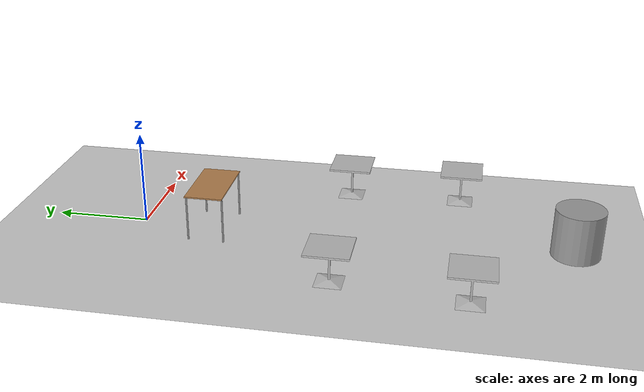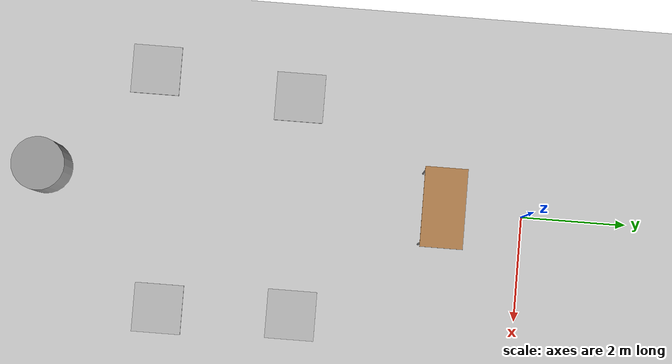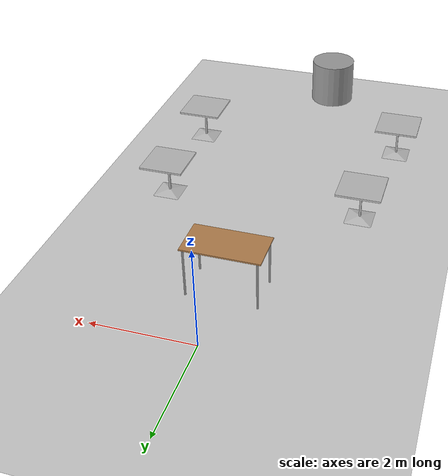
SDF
<sdf version="1.7">
 <world name="default">
  <light name="sun" type="directional">
   <pose>0 0 10 0 -0 0</pose>
   <diffuse>0.8 0.8 0.8 1</diffuse>
   <specular>0.2 0.2 0.2 1</specular>
   <attenuation>
    <range>1000</range>
    <constant>0.9</constant>
    <linear>0.01</linear>
    <quadratic>0.001</quadratic>
   </attenuation>
   <direction>-0.5 0.1 -0.9</direction>
   <spot><inner_angle>0</inner_angle><outer_angle>0</outer_angle><falloff>0</falloff></spot>
  </light>
  <model name="ground_plane">
   <static>1</static>
   <link name="link">
    <collision name="collision">
     <geometry><plane><normal>0 0 1</normal><size>100 100</size></plane></geometry>
     <surface>
      <contact><collide_bitmask>65535</collide_bitmask></contact>
      <friction><ode><mu>100</mu><mu2>50</mu2></ode></friction>
     </surface>
    </collision>
    <visual name="visual">
     <cast_shadows>0</cast_shadows>
     <geometry><plane><normal>0 0 1</normal><size>100 100</size></plane></geometry>
     <material>
      <script><uri>file://media/materials/scripts/gazebo.material</uri><name>Gazebo/Grey</name></script>
     </material>
    </visual>
   </link>
  </model>
  <gravity>0 0 -9.8</gravity>
  <magnetic_field>6e-06 2.3e-05 -4.2e-05</magnetic_field>
  <atmosphere type="adiabatic"/>
  <physics type="ode">
   <max_step_size>0.001</max_step_size>
   <real_time_factor>1</real_time_factor>
   <real_time_update_rate>1000</real_time_update_rate>
  </physics>
  <scene><ambient>0.4 0.4 0.4 1</ambient><background>0.7 0.7 0.7 1</background><shadows>1</shadows></scene>
  <spherical_coordinates>
   <surface_model>EARTH_WGS84</surface_model>
   <latitude_deg>0</latitude_deg>
   <longitude_deg>0</longitude_deg>
   <elevation>0</elevation>
   <heading_deg>0</heading_deg>
  </spherical_coordinates>
  <model name="cafe_table">
   <static>1</static>
   <link name="link">
    <collision name="surface">
     <pose>0 0 0.755 0 -0 0</pose>
     <geometry><box><size>0.913 0.913 0.04</size></box></geometry>
    </collision>
    <collision name="column">
     <pose>0 0 0.37 0 -0 0</pose>
     <geometry><box><size>0.042 0.042 0.74</size></box></geometry>
    </collision>
    <collision name="base">
     <pose>0 0 0.02 0 -0 0</pose>
     <geometry><box><size>0.56 0.56 0.04</size></box></geometry>
    </collision>
    <visual name="visual">
     <geometry><mesh><uri>model://cafe_table/meshes/cafe_table.dae</uri></mesh></geometry>
    </visual>
   </link>
   <pose>-1.87461 -4.38712 0 0 -0 0</pose>
  </model>
  <model name="cafe_table_0">
   <static>1</static>
   <link name="link">
    <collision name="surface">
     <pose>0 0 0.755 0 -0 0</pose>
     <geometry><box><size>0.913 0.913 0.04</size></box></geometry>
    </collision>
    <collision name="column">
     <pose>0 0 0.37 0 -0 0</pose>
     <geometry><box><size>0.042 0.042 0.74</size></box></geometry>
    </collision>
    <collision name="base">
     <pose>0 0 0.02 0 -0 0</pose>
     <geometry><box><size>0.56 0.56 0.04</size></box></geometry>
    </collision>
    <visual name="visual">
     <geometry><mesh><uri>model://cafe_table/meshes/cafe_table.dae</uri></mesh></geometry>
    </visual>
   </link>
   <pose>2.20419 -4.23305 0 0 -0 0</pose>
  </model>
  <model name="cafe_table_1">
   <static>1</static>
   <link name="link">
    <collision name="surface">
     <pose>0 0 0.755 0 -0 0</pose>
     <geometry><box><size>0.913 0.913 0.04</size></box></geometry>
    </collision>
    <collision name="column">
     <pose>0 0 0.37 0 -0 0</pose>
     <geometry><box><size>0.042 0.042 0.74</size></box></geometry>
    </collision>
    <collision name="base">
     <pose>0 0 0.02 0 -0 0</pose>
     <geometry><box><size>0.56 0.56 0.04</size></box></geometry>
    </collision>
    <visual name="visual">
     <geometry><mesh><uri>model://cafe_table/meshes/cafe_table.dae</uri></mesh></geometry>
    </visual>
   </link>
   <pose>-2.18145 -7.11906 0 0 -0 0</pose>
  </model>
  <model name="cafe_table_2">
   <static>1</static>
   <link name="link">
    <collision name="surface">
     <pose>0 0 0.755 0 -0 0</pose>
     <geometry><box><size>0.913 0.913 0.04</size></box></geometry>
    </collision>
    <collision name="column">
     <pose>0 0 0.37 0 -0 0</pose>
     <geometry><box><size>0.042 0.042 0.74</size></box></geometry>
    </collision>
    <collision name="base">
     <pose>0 0 0.02 0 -0 0</pose>
     <geometry><box><size>0.56 0.56 0.04</size></box></geometry>
    </collision>
    <visual name="visual">
     <geometry><mesh><uri>model://cafe_table/meshes/cafe_table.dae</uri></mesh></geometry>
    </visual>
   </link>
   <pose>2.27873 -6.7197 0 0 -0 0</pose>
  </model>
  <model name="table">
   <static>1</static>
   <link name="link">
    <collision name="surface">
     <pose>0 0 1 0 -0 0</pose>
     <geometry><box><size>1.5 0.8 0.03</size></box></geometry>
     <surface><friction><ode><mu>0.6</mu><mu2>0.6</mu2></ode></friction></surface>
    </collision>
    <visual name="visual1">
     <pose>0 0 1 0 -0 0</pose>
     <geometry><box><size>1.5 0.8 0.03</size></box></geometry>
     <material>
      <script><uri>file://media/materials/scripts/gazebo.material</uri><name>Gazebo/Wood</name></script>
     </material>
    </visual>
    <collision name="front_left_leg">
     <pose>0.68 0.38 0.5 0 -0 0</pose>
     <geometry><cylinder><radius>0.02</radius><length>1</length></cylinder></geometry>
    </collision>
    <visual name="front_left_leg">
     <pose>0.68 0.38 0.5 0 -0 0</pose>
     <geometry><cylinder><radius>0.02</radius><length>1</length></cylinder></geometry>
     <material>
      <script><uri>file://media/materials/scripts/gazebo.material</uri><name>Gazebo/Grey</name></script>
     </material>
    </visual>
    <collision name="front_right_leg">
     <pose>0.68 -0.38 0.5 0 -0 0</pose>
     <geometry><cylinder><radius>0.02</radius><length>1</length></cylinder></geometry>
    </collision>
    <visual name="front_right_leg">
     <pose>0.68 -0.38 0.5 0 -0 0</pose>
     <geometry><cylinder><radius>0.02</radius><length>1</length></cylinder></geometry>
     <material>
      <script><uri>file://media/materials/scripts/gazebo.material</uri><name>Gazebo/Grey</name></script>
     </material>
    </visual>
    <collision name="back_right_leg">
     <pose>-0.68 -0.38 0.5 0 -0 0</pose>
     <geometry><cylinder><radius>0.02</radius><length>1</length></cylinder></geometry>
    </collision>
    <visual name="back_right_leg">
     <pose>-0.68 -0.38 0.5 0 -0 0</pose>
     <geometry><cylinder><radius>0.02</radius><length>1</length></cylinder></geometry>
     <material>
      <script><uri>file://media/materials/scripts/gazebo.material</uri><name>Gazebo/Grey</name></script>
     </material>
    </visual>
    <collision name="back_left_leg">
     <pose>-0.68 0.38 0.5 0 -0 0</pose>
     <geometry><cylinder><radius>0.02</radius><length>1</length></cylinder></geometry>
    </collision>
    <visual name="back_left_leg">
     <pose>-0.68 0.38 0.5 0 -0 0</pose>
     <geometry><cylinder><radius>0.02</radius><length>1</length></cylinder></geometry>
     <material>
      <script><uri>file://media/materials/scripts/gazebo.material</uri><name>Gazebo/Grey</name></script>
     </material>
    </visual>
   </link>
   <pose>-0.004144 -1.54849 0 0 -0 0</pose>
  </model>
  <model name="unit_cylinder">
   <pose>-0.223678 -9.11594 0.689802 2e-06 -3e-06 -3e-06</pose>
   <link name="link">
    <inertial>
     <mass>1</mass>
     <inertia><ixx>0.145833</ixx><ixy>0</ixy><ixz>0</ixz><iyy>0.145833</iyy><iyz>0</iyz><izz>0.125</izz></inertia>
    </inertial>
    <collision name="collision">
     <geometry><cylinder><radius>0.5</radius><length>1</length></cylinder></geometry>
    </collision>
    <visual name="visual">
     <geometry><cylinder><radius>0.5</radius><length>1</length></cylinder></geometry>
     <material>
      <script><name>Gazebo/Grey</name><uri>file://media/materials/scripts/gazebo.material</uri></script>
     </material>
    </visual>
   </link>
  </model>
 </world>
</sdf>
